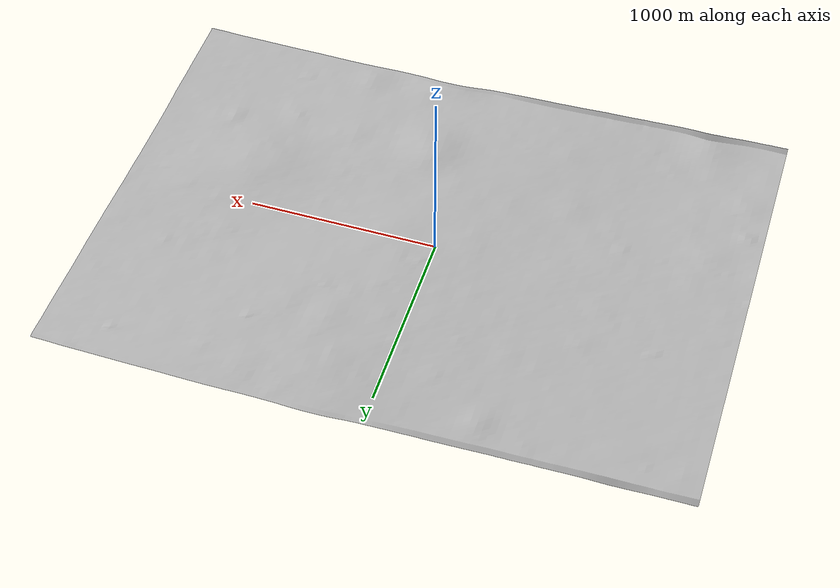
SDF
<?xml version="1.0" ?>
<sdf version="1.7">
  <world name="south_pole_world">

    <gravity>0 0 -1.622</gravity> <!-- for lunar gravity -->

    <physics name="1ms" type="ignored">
      <max_step_size>0.001</max_step_size>
      <real_time_factor>1.0</real_time_factor>
    </physics>

    <!-- scene settings -->
    <scene>
      <!-- Lunar ambient is very low because there is no air to scatter light -->
      <ambient>0.05 0.05 0.05 1.0</ambient>
      <background>0.0 0.0 0.0 1.0</background>
      <grid>false</grid>
      <shadows>true</shadows>

    </scene>

    <!-- 1. Handles the math/physics for your controller -->
    <plugin filename="libgz-sim-physics-system.so" name="gz::sim::systems::Physics" />

    <!-- 2. Sends visual data to the GUI so you can see markers -->
    <plugin filename="libgz-sim-scene-broadcaster-system.so" name="gz::sim::systems::SceneBroadcaster" />

    <!-- 3. Required for processing user and marker commands -->
    <plugin filename="libgz-sim-user-commands-system.so" name="gz::sim::systems::UserCommands" />

    <!-- sun unsure if this is working tbh -->
    <light name="sun" type="directional">
      <cast_shadows>true</cast_shadows>
      <pose>0 0 500 0 0 0</pose>
      <!-- Intense white light characteristic of the moon's surface -->
      <diffuse>1.0 1.0 1.0 1</diffuse>
      <intensity>2.0</intensity>
      <specular>0.5 0.5 0.5 1</specular>
      <direction>-1.5 0.1 -1.0</direction>
    </light>

    <!-- Terrain Model -->
    <model name="lunar_terrain">
      <static>true</static>
      <!-- X Y Z Roll Pitch Yaw -->
      <pose>0 0 0 1.5708 0 0</pose> <!-- change z here to move the terrain up and down -->
      <link name="terrain_link">
        <collision name="collision">
          <geometry>
            <mesh>
              <uri>model://src/rover_sim/world/meshes/6221_forced_scale.obj</uri>
              <scale>1 1 1</scale>
            </mesh>
          </geometry>
          <surface>
            <contact>
              <collide_bitmask>0xffff</collide_bitmask>
            </contact>
            <friction>
              <ode>
                <mu>1.2</mu>
                <mu2>1.2</mu2>
              </ode>
            </friction>
          </surface>
        </collision>

        <visual name="visual">
          <geometry>
            <mesh>
              <uri>model://src/rover_sim/world/meshes/6221_forced_scale.obj</uri>
              <scale>1 1 1</scale>
            </mesh>
          </geometry>
          <material>
            <ambient>0.6 0.6 0.6 1</ambient>
            <diffuse>0.7 0.7 0.7 1</diffuse>
            <specular>0 0 0 1</specular>
          </material>
        </visual>
      </link>
    </model>

  </world>
</sdf>
